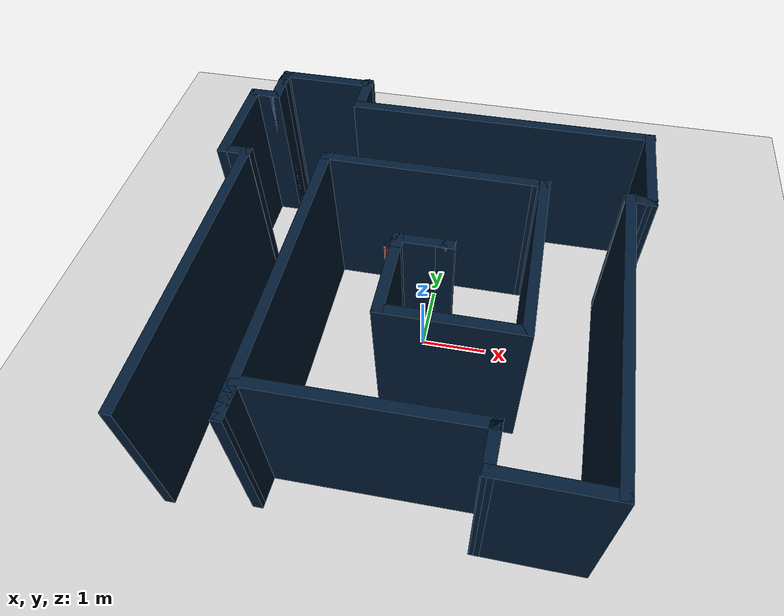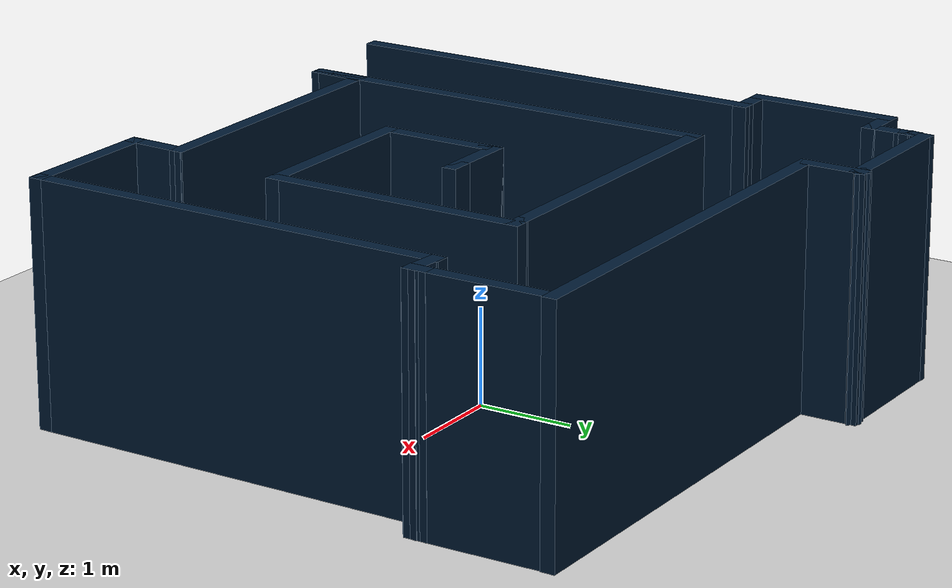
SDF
<?xml version="1.0" ?>
<sdf version="1.8">
  <world name='test_map_1'>
    <physics name='1ms' type='ignored'>
        <max_step_size>0.003</max_step_size>
        <real_time_factor>1</real_time_factor>
        <real_time_update_rate>1000</real_time_update_rate>
    </physics>
    <plugin filename="libignition-gazebo-physics-system.so" name="ignition::gazebo::systems::Physics" />
    <plugin filename="libignition-gazebo-user-commands-system.so" name="ignition::gazebo::systems::UserCommands" />
    <plugin filename="libignition-gazebo-scene-broadcaster-system.so" name="ignition::gazebo::systems::SceneBroadcaster" />
    <plugin filename="libignition-gazebo-sensors-system.so" name="ignition::gazebo::systems::Sensors">
        <render_engine>ogre</render_engine>
    </plugin>
<light type="directional" name="world_light">
  <pose>0 0 10 0 0 0</pose>
  <diffuse>0.8 0.8 0.8 1</diffuse>
  <specular>0.2 0.2 0.2 1</specular>
  <direction>-0.5 0.1 -0.9</direction>
  <cast_shadows>true</cast_shadows>
</light>
    <model name="ground_plane">
        <static>true</static>
        <link name="link">
            <collision name="collision"><geometry><plane><normal>0 0 1</normal><size>100 100</size></plane></geometry></collision>
            <visual name="visual">
                <geometry><plane><normal>0 0 1</normal><size>100 100</size></plane></geometry>
                <material>
                    <ambient>0.8 0.8 0.8 1</ambient>
                    <diffuse>0.8 0.8 0.8 1</diffuse>
                    <specular>0.8 0.8 0.8 1</specular>
                </material>
            </visual>
        </link>
    </model>

    <model name='mappa_1'>
      <static>true</static>
      <pose>0.654951 0.036824 0 0 -0 0</pose>

      <link name='Wall_17'>
        <pose>-3.742 1.18347 0 0 -0 3.14159</pose>
        <collision name='Wall_17_Collision'>
          <pose>0 0 1.25 0 -0 0</pose>
          <geometry><box><size>0.5 0.15 2.5</size></box></geometry>
        </collision>
        <visual name='Wall_17_Visual'>
          <pose>0 0 1.25 0 -0 0</pose>
          <geometry><box><size>0.5 0.15 2.5</size></box></geometry>
          <material><ambient>0.1 0.1 0.1 1</ambient><diffuse>0 0.1 0.2 1</diffuse><specular>0 0.01 0.05 1</specular></material>
        </visual>
      </link>

      <link name='Wall_18'>
        <pose>-3.92309 1.88894 0 0 -0 1.5708</pose>
        <collision name='Wall_18_Collision'>
          <pose>0 0 1.25 0 -0 0</pose>
          <geometry><box><size>1.56095 0.15 2.5</size></box></geometry>
        </collision>
        <visual name='Wall_18_Visual'>
          <pose>0 0 1.25 0 -0 0</pose>
          <geometry><box><size>1.56095 0.15 2.5</size></box></geometry>
          <material><ambient>0.1 0.1 0.1 1</ambient><diffuse>0 0.1 0.2 1</diffuse><specular>0 0.01 0.05 1</specular></material>
        </visual>
      </link>

      <link name='Wall_19'>
        <pose>-3.742 2.60051 0 0 -0 0</pose>
        <collision name='Wall_19_Collision'>
          <pose>0 0 1.25 0 -0 0</pose>
          <geometry><box><size>0.5 0.15 2.5</size></box></geometry>
        </collision>
        <visual name='Wall_19_Visual'>
          <pose>0 0 1.25 0 -0 0</pose>
          <geometry><box><size>0.5 0.15 2.5</size></box></geometry>
          <material><ambient>0.1 0.1 0.1 1</ambient><diffuse>0 0.1 0.2 1</diffuse><specular>0 0.01 0.05 1</specular></material>
        </visual>
      </link>

      <link name='Wall_32'>
        <pose>1.32927 -3.15702 0 0 -0 3.13446</pose>
        <collision name='Wall_32_Collision'>
          <pose>0 0 1.25 0 -0 0</pose>
          <geometry><box><size>1.55135 0.15 2.5</size></box></geometry>
        </collision>
        <visual name='Wall_32_Visual'>
          <pose>0 0 1.25 0 -0 0</pose>
          <geometry><box><size>1.55135 0.15 2.5</size></box></geometry>
          <material><ambient>0.1 0.1 0.1 1</ambient><diffuse>0 0.1 0.2 1</diffuse><specular>0 0.01 0.05 1</specular></material>
        </visual>
      </link>
      <link name='Wall_33'>
        <pose>0.62666 -2.88264 0 0 -0 1.53317</pose>
        <collision name='Wall_33_Collision'>
          <pose>0 0 1.25 0 -0 0</pose>
          <geometry><box><size>0.689145 0.15 2.5</size></box></geometry>
        </collision>
        <visual name='Wall_33_Visual'>
          <pose>0 0 1.25 0 -0 0</pose>
          <geometry><box><size>0.689145 0.15 2.5</size></box></geometry>
          <material><ambient>0.1 0.1 0.1 1</ambient><diffuse>0 0.1 0.2 1</diffuse><specular>0 0.01 0.05 1</specular></material>
        </visual>
      </link>

      <link name='Wall_34'>
        <pose>-0.84924 -2.60526 0 0 -0 -3.13621</pose>
        <collision name='Wall_34_Collision'>
          <pose>0 0 1.25 0 -0 0</pose>
          <geometry><box><size>3.12213 0.15 2.5</size></box></geometry>
        </collision>
        <visual name='Wall_34_Visual'>
          <pose>0 0 1.25 0 -0 0</pose>
          <geometry><box><size>3.12213 0.15 2.5</size>
          </box></geometry>
          <material><ambient>0.1 0.1 0.1 1</ambient><diffuse>0 0.1 0.2 1</diffuse><specular>0 0.01 0.05 1</specular></material>
        </visual>
      </link>

      <link name='Wall_35'>
        <pose>-2.3601 -2.83062 0 0 -0 -1.61138</pose>
        <collision name='Wall_35_Collision'>
          <pose>0 0 1.25 0 -0 0</pose>
          <geometry><box><size>0.585082 0.15 2.5</size></box></geometry>
        </collision>
        <visual name='Wall_35_Visual'>
          <pose>0 0 1.25 0 -0 0</pose>
          <geometry><box><size>0.585082 0.15 2.5</size></box></geometry>
          <material><ambient>0.1 0.1 0.1 1</ambient><diffuse>0 0.1 0.2 1</diffuse><specular>0 0.01 0.05 1</specular></material>
        </visual>
      </link>

      <link name='Wall_36'>
        <pose>-2.36892 -0.884197 0 0 -0 1.5708</pose>
        <collision name='Wall_36_Collision'>
          <pose>0 0 1.25 0 -0 0</pose>
          <geometry><box><size>4.5 0.15 2.5</size></box></geometry>
        </collision>
        <visual name='Wall_36_Visual'>
          <pose>0 0 1.25 0 -0 0</pose>
          <geometry><box><size>4.5 0.15 2.5</size></box></geometry>
          <material><ambient>0.1 0.1 0.1 1</ambient><diffuse>0 0.1 0.2 1</diffuse><specular>0 0.01 0.05 1</specular></material>
        </visual>
      </link>

      <link name='Wall_37'>
        <pose>-0.802102 1.29641 0 0 -0 -0.003579</pose>
        <collision name='Wall_37_Collision'>
          <pose>0 0 1.25 0 -0 0</pose>
          <geometry><box><size>3.28372 0.15 2.5</size></box></geometry>
        </collision>
        <visual name='Wall_37_Visual'>
          <pose>0 0 1.25 0 -0 0</pose>
          <geometry><box><size>3.28372 0.15 2.5</size></box></geometry>
          <material><ambient>0.1 0.1 0.1 1</ambient><diffuse>0 0.1 0.2 1</diffuse><specular>0 0.01 0.05 1</specular></material>
        </visual>
      </link>

      <link name='Wall_38'>
        <pose>0.814719 1.2908 0 0 -0 0</pose>
        <collision name='Wall_38_Collision'>
          <pose>0 0 1.25 0 -0 0</pose>
          <geometry><box><size>0.25 0.15 2.5</size></box></geometry>
        </collision>
        <visual name='Wall_38_Visual'>
          <pose>0 0 1.25 0 -0 0</pose>
          <geometry><box><size>0.25 0.15 2.5</size></box></geometry>
          <material><ambient>0.1 0.1 0.1 1</ambient><diffuse>0 0.1 0.2 1</diffuse><specular>0 0.01 0.05 1</specular></material>
        </visual>
      </link>

      <link name='Wall_39'>
        <pose>0.864719 -0.009197 0 0 -0 -1.5708</pose>
        <collision name='Wall_39_Collision'>
          <pose>0 0 1.25 0 -0 0</pose>
          <geometry><box><size>2.75 0.15 2.5</size></box></geometry>
        </collision>
        <visual name='Wall_39_Visual'>
          <pose>0 0 1.25 0 -0 0</pose>
          <geometry><box><size>2.75 0.15 2.5</size></box></geometry>
          <material><ambient>0.1 0.1 0.1 1</ambient><diffuse>0 0.1 0.2 1</diffuse><specular>0 0.01 0.05 1</specular></material>
        </visual>
      </link>

      <link name='Wall_4'>
        <pose>-3.57919 -1.01286 0 0 -0 1.56802</pose>
        <collision name='Wall_4_Collision'>
          <pose>0 0 1.25 0 -0 0</pose>
          <geometry><box><size>4.54268 0.15 2.5</size></box></geometry>
        </collision>
        <visual name='Wall_4_Visual'>
          <pose>0 0 1.25 0 -0 0</pose>
          <geometry><box><size>4.54268 0.15 2.5</size></box></geometry>
          <material><ambient>0.1 0.1 0.1 1</ambient><diffuse>0 0.1 0.2 1</diffuse><specular>0 0.01 0.05 1</specular></material>
        </visual>
      </link>

      <link name='Wall_40'>
        <pose>-0.060281 -1.3092 0 0 -0 3.14159</pose>
        <collision name='Wall_40_Collision'>
          <pose>0 0 1.25 0 -0 0</pose>
          <geometry><box><size>2 0.15 2.5</size></box></geometry>
        </collision>
        <visual name='Wall_40_Visual'>
          <pose>0 0 1.25 0 -0 0</pose>
          <geometry><box><size>2 0.15 2.5</size></box></geometry>
          <material><ambient>0.1 0.1 0.1 1</ambient><diffuse>0 0.1 0.2 1</diffuse><specular>0 0.01 0.05 1</specular></material>
        </visual>
      </link>

      <link name='Wall_43'>
        <pose>-0.985281 -0.759197 0 0 -0 1.5708</pose>
        <collision name='Wall_43_Collision'>
          <pose>0 0 1.25 0 -0 0</pose>
          <geometry><box><size>1.25 0.15 2.5</size></box></geometry>
        </collision>
        <visual name='Wall_43_Visual'>
          <pose>0 0 1.25 0 -0 0</pose>
          <geometry><box><size>1.25 0.15 2.5</size></box></geometry>
          <material><ambient>0.1 0.1 0.1 1</ambient><diffuse>0 0.1 0.2 1</diffuse><specular>0 0.01 0.05 1</specular></material>
        </visual>
      </link>

      <link name='Wall_44'>
        <pose>-0.985281 -0.159197 0 0 -0 1.5708</pose>
        <collision name='Wall_44_Collision'>
          <pose>0 0 1.25 0 -0 0</pose>
          <geometry><box><size>0.25 0.15 2.5</size></box></geometry>
        </collision>
        <visual name='Wall_44_Visual'>
          <pose>0 0 1.25 0 -0 0</pose>
          <geometry><box><size>0.25 0.15 2.5</size></box></geometry>
          <material><ambient>0.1 0.1 0.1 1</ambient><diffuse>0 0.1 0.2 1</diffuse><specular>0 0.01 0.05 1</specular></material>
        </visual>
      </link>

      <link name='Wall_45'>
        <pose>-0.685281 -0.109197 0 0 -0 0</pose>
        <collision name='Wall_45_Collision'>
          <pose>0 0 1.25 0 -0 0</pose>
          <geometry><box><size>0.75 0.15 2.5</size></box></geometry>
        </collision>
        <visual name='Wall_45_Visual'>
          <pose>0 0 1.25 0 -0 0</pose>
          <geometry><box><size>0.75 0.15 2.5</size></box></geometry>
          <material><ambient>0.1 0.1 0.1 1</ambient><diffuse>0 0.1 0.2 1</diffuse><specular>0 0.01 0.05 1</specular></material>
        </visual>
      </link>

      <link name='Wall_46'>
        <pose>-0.335281 -0.109197 0 0 -0 0</pose>
        <collision name='Wall_46_Collision'>
          <pose>0 0 1.25 0 -0 0</pose>
          <geometry><box><size>0.25 0.15 2.5</size></box></geometry>
        </collision>
        <visual name='Wall_46_Visual'>
          <pose>0 0 1.25 0 -0 0</pose>
          <geometry><box><size>0.25 0.15 2.5</size></box></geometry>
          <material><ambient>0.1 0.1 0.1 1</ambient><diffuse>0 0.1 0.2 1</diffuse><specular>0 0.01 0.05 1</specular></material>
        </visual>
      </link>

      <link name='Wall_58'>
        <pose>-3.567 2.77551 0 0 -0 1.5708</pose>
        <collision name='Wall_58_Collision'>
          <pose>0 0 1.25 0 -0 0</pose>
          <geometry><box><size>0.5 0.15 2.5</size></box></geometry>
        </collision>
        <visual name='Wall_58_Visual'>
          <pose>0 0 1.25 0 -0 0</pose>
          <geometry><box><size>0.5 0.15 2.5</size></box></geometry>
          <material><ambient>0.1 0.1 0.1 1</ambient><diffuse>0 0.1 0.2 1</diffuse><specular>0 0.01 0.05 1</specular></material>
        </visual>
      </link>

      <link name='Wall_59'>
        <pose>-3.567 3.00051 0 0 -0 1.5708</pose>
        <collision name='Wall_59_Collision'>
          <pose>0 0 1.25 0 -0 0</pose>
          <geometry><box><size>0.25 0.15 2.5</size></box></geometry>
        </collision>
        <visual name='Wall_59_Visual'>
          <pose>0 0 1.25 0 -0 0</pose>
          <geometry><box><size>0.25 0.15 2.5</size></box></geometry>
          <material><ambient>0.1 0.1 0.1 1</ambient><diffuse>0 0.1 0.2 1</diffuse><specular>0 0.01 0.05 1</specular></material>
        </visual>
      </link>

      <link name='Wall_60'>
        <pose>-3.55648 3.10752 0 0 -0 1.38843</pose>
        <collision name='Wall_60_Collision'>
          <pose>0 0 1.25 0 -0 0</pose>
          <geometry><box><size>0.265941 0.15 2.5</size></box></geometry>
        </collision>
        <visual name='Wall_60_Visual'>
          <pose>0 0 1.25 0 -0 0</pose>
          <geometry><box><size>0.265941 0.15 2.5</size></box></geometry>
          <material><ambient>0.1 0.1 0.1 1</ambient><diffuse>0 0.1 0.2 1</diffuse><specular>0 0.01 0.05 1</specular></material>
        </visual>
      </link>

      <link name='Wall_61'>
        <pose>-2.87798 3.16453 0 0 -0 0</pose>
        <collision name='Wall_61_Collision'>
          <pose>0 0 1.25 0 -0 0</pose>
          <geometry><box><size>1.5 0.15 2.5</size></box></geometry>
        </collision>
        <visual name='Wall_61_Visual'>
          <pose>0 0 1.25 0 -0 0</pose>
          <geometry><box><size>1.5 0.15 2.5</size></box></geometry>
          <material><ambient>0.1 0.1 0.1 1</ambient><diffuse>0 0.1 0.2 1</diffuse><specular>0 0.01 0.05 1</specular></material>
        </visual>
      </link>

      <link name='Wall_62'>
        <pose>-2.19597 3.16453 0 0 -0 0</pose>
        <collision name='Wall_62_Collision'>
          <pose>0 0 1.25 0 -0 0</pose>
          <geometry><box><size>0.15 0.15 2.5</size></box></geometry>
        </collision>
        <visual name='Wall_62_Visual'>
          <pose>0 0 1.25 0 -0 0</pose>
          <geometry><box><size>0.15 0.15 2.5</size></box></geometry>
          <material><ambient>0.1 0.1 0.1 1</ambient><diffuse>0 0.1 0.2 1</diffuse><specular>0 0.01 0.05 1</specular></material>
        </visual>
      </link>

      <link name='Wall_63'>
        <pose>-2.18802 3.17154 0 0 -0 0.722833</pose>
        <collision name='Wall_63_Collision'>
          <pose>0 0 1.25 0 -0 0</pose>
          <geometry><box><size>0.171191 0.15 2.5</size></box></geometry>
        </collision>
        <visual name='Wall_63_Visual'>
          <pose>0 0 1.25 0 -0 0</pose>
          <geometry><box><size>0.171191 0.15 2.5</size></box></geometry>
          <material><ambient>0.1 0.1 0.1 1</ambient><diffuse>0 0.1 0.2 1</diffuse><specular>0 0.01 0.05 1</specular></material>
        </visual>
      </link>

      <link name='Wall_64'>
        <pose>-2.18008 2.89607 0 0 -0 -1.5708</pose>
        <collision name='Wall_64_Collision'>
          <pose>0 0 1.25 0 -0 0</pose>
          <geometry><box><size>0.728973 0.15 2.5</size></box></geometry>
        </collision>
        <visual name='Wall_64_Visual'>
          <pose>0 0 1.25 0 -0 0</pose>
          <geometry><box><size>0.728973 0.15 2.5</size></box></geometry>
          <material><ambient>0.1 0.1 0.1 1</ambient><diffuse>0 0.1 0.2 1</diffuse><specular>0 0.01 0.05 1</specular></material>
        </visual>
      </link>

      <link name='Wall_65'>
        <pose>0.090763 2.60171 0 0 -0 0.000939</pose>
        <collision name='Wall_65_Collision'>
          <pose>0 0 1.25 0 -0 0</pose>
          <geometry><box><size>4.69168 0.15 2.5</size></box></geometry>
        </collision>
        <visual name='Wall_65_Visual'>
          <pose>0 0 1.25 0 -0 0</pose>
          <geometry><box><size>4.69168 0.15 2.5</size></box></geometry>
          <material><ambient>0.1 0.1 0.1 1</ambient><diffuse>0 0.1 0.2 1</diffuse><specular>0 0.01 0.05 1</specular></material>
        </visual>
      </link>

      <link name='Wall_71'>
        <pose>2.04882 -0.957823 0 0 -0 1.56218</pose>
        <collision name='Wall_71_Collision'>
          <pose>0 0 1.25 0 -0 0</pose>
          <geometry><box><size>4.53612 0.15 2.5</size></box></geometry>
        </collision>
        <visual name='Wall_71_Visual'>
          <pose>0 0 1.25 0 -0 0</pose>
          <geometry><box><size>4.53612 0.15 2.5</size></box></geometry>
          <material><ambient>0.1 0.1 0.1 1</ambient><diffuse>0 0.1 0.2 1</diffuse><specular>0 0.01 0.05 1</specular></material>
        </visual>
      </link>

      <link name='Wall_74'>
        <pose>2.35551 1.94712 0 0 -0 -1.56143</pose>
        <collision name='Wall_74_Collision'>
          <pose>0 0 1.25 0 -0 0</pose>
          <geometry><box><size>1.4513 0.15 2.5</size></box></geometry>
        </collision>
        <visual name='Wall_74_Visual'>
          <pose>0 0 1.25 0 -0 0</pose>
          <geometry><box><size>1.4513 0.15 2.5</size></box></geometry>
          <material><ambient>0.1 0.1 0.1 1</ambient><diffuse>0 0.1 0.2 1</diffuse><specular>0 0.01 0.05 1</specular></material>
        </visual>
      </link>

      <link name='Wall_80'>
        <pose>2.3616 1.2465 0 0 -0 -1.5708</pose>
        <collision name='Wall_80_Collision'>
          <pose>0 0 1.25 0 -0 0</pose>
          <geometry><box><size>0.25 0.15 2.5</size></box></geometry>
        </collision>
        <visual name='Wall_80_Visual'>
          <pose>0 0 1.25 0 -0 0</pose>
          <geometry><box><size>0.25 0.15 2.5</size></box></geometry>
          <material><ambient>0.1 0.1 0.1 1</ambient><diffuse>0 0.1 0.2 1</diffuse><specular>0 0.01 0.05 1</specular></material>
        </visual>
      </link>

      <link name='Wall_81'>
        <pose>2.21466 1.21022 0 0 -0 3.0485</pose>
        <collision name='Wall_81_Collision'>
          <pose>0 0 1.25 0 -0 0</pose>
          <geometry><box><size>0.445166 0.15 2.5</size></box></geometry>
        </collision>
        <visual name='Wall_81_Visual'>
          <pose>0 0 1.25 0 -0 0</pose>
          <geometry><box><size>0.445166 0.15 2.5</size></box></geometry>
          <material><ambient>0.1 0.1 0.1 1</ambient><diffuse>0 0.1 0.2 1</diffuse><specular>0 0.01 0.05 1</specular></material>
        </visual>
      </link>

    </model>
  <model name="visual_goal_flag">
      <static>true</static>
      <pose>-0.7 0.59 0 0 0 0</pose>
      <link name="link">

        <visual name="pole">
          <pose>0 0 0.75 0 0 0</pose>
          <geometry>
            <cylinder>
              <radius>0.02</radius>
              <length>1.5</length>
            </cylinder>
          </geometry>
          <material>
            <ambient>0.5 0.5 0.5 1</ambient>
            <diffuse>0.5 0.5 0.5 1</diffuse>
            <specular>0.8 0.8 0.8 1</specular>
          </material>
        </visual>

        <visual name="cloth">
          <pose>0.31 0 1.3 0 0 0</pose>
          <geometry>
            <box>
              <size>0.6 0.01 0.4</size>
            </box>
          </geometry>
          <material>
            <ambient>1 0 0 1</ambient>
            <diffuse>1 0 0 1</diffuse>
            <specular>0.1 0.1 0.1 1</specular>
          </material>
        </visual>
      </link>
    </model>
  </world>
</sdf>
